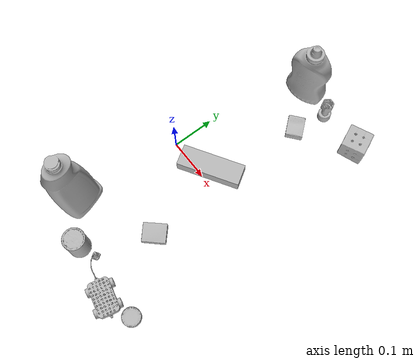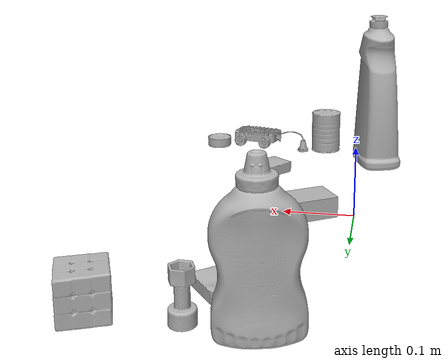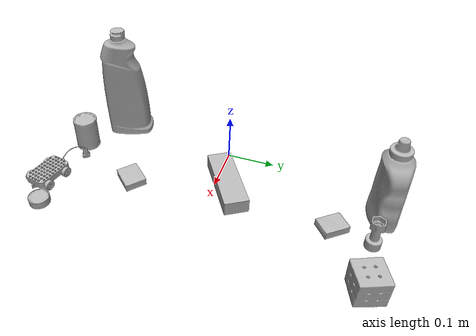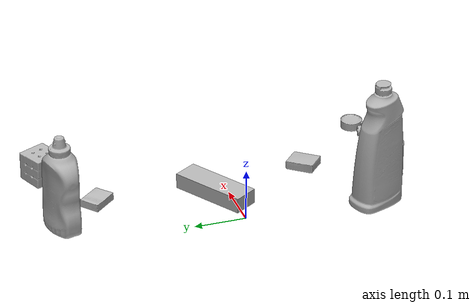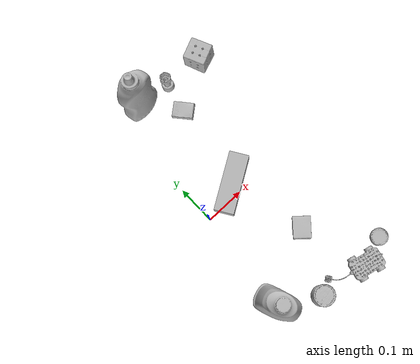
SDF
<sdf version="1.4">
  <world name="default">
    <light name="light1" type="point">
      <pose>0 0 1 0 0 0</pose>
      <diffuse>3 3 3 1</diffuse>
      <specular>3 3 3 1</specular>
    </light>
    <light name="light2" type="point">
      <pose>0 0.5 2 0 0 0</pose>
      <diffuse>1 1 1 1</diffuse>
      <specular>1 1 1 1</specular>
    </light>
    <light name="light3" type="point">
      <pose>0 0.5 2 0 0 0</pose>
      <diffuse>3 3 3 1</diffuse>
      <specular>3 3 3 1</specular>
    </light>
    <scene>
      <ambient>0.7 0.7 0.7</ambient>
    </scene>
    <model name="bottle1">
      <link name="link_bottle1">
        <collision name="default">
          <geometry>
            <mesh>
              <uri>model://mustard_bottle/collision_meshes/collision.obj</uri>
              <scale>1.0 1.0 1.0</scale>
            </mesh>
          </geometry>
          <surface>
            <friction>
              <ode>
                <mu>0.5</mu>
                <mu2>0.5</mu2>
              </ode>
            </friction>
          <contact>
        <ode>
            <max_vel>0</max_vel>
            <min_depth>0.0001</min_depth>
            <kp>1e8</kp>
        </ode>
    </contact></surface>
        </collision>
        <visual name="default">
          <geometry>
            <mesh>
              <uri>model://mustard_bottle/visual_meshes/visual.dae</uri>
              <scale>1.0 1.0 1.0</scale>
            </mesh>
          </geometry>
        </visual>
        <inertial>
          <mass>0.7866348028182983</mass>
          <pose>0.0005032454500906169 -0.00015647400869056582 -0.0174757931381464 0.00041823249995057767 0.0009465787698991903 0.02485370186883952</pose>
          <inertia>
            <ixx>0.0021843775</ixx>
            <iyy>0.0019166061</iyy>
            <izz>0.0005756938</izz>
            <ixy>0</ixy>
            <ixz>0</ixz>
            <iyz>0</iyz>
          </inertia>
        </inertial>
      </link>
      <pose>0.07635516673326492 0.3345118761062622 0.09583090245723724 -0.012050453393902896 -0.004890171955456827 -1.3570061366386656</pose>
    </model>
    <model name="bottle2">
      <link name="link_bottle2">
        <collision name="default">
          <geometry>
            <mesh>
              <uri>model://bleach_cleanser/collision_meshes/collision.obj</uri>
              <scale>1.0 1.0 1.0</scale>
            </mesh>
          </geometry>
          <surface>
            <friction>
              <ode>
                <mu>0.5</mu>
                <mu2>0.5</mu2>
              </ode>
            </friction>
          <contact>
        <ode>
            <max_vel>0</max_vel>
            <min_depth>0.0001</min_depth>
            <kp>1e8</kp>
        </ode>
    </contact></surface>
        </collision>
        <visual name="default">
          <geometry>
            <mesh>
              <uri>model://bleach_cleanser/visual_meshes/visual.dae</uri>
              <scale>1.0 1.0 1.0</scale>
            </mesh>
          </geometry>
        </visual>
        <inertial>
          <mass>1.5776710510253906</mass>
          <pose>0.00012193183647468686 0.003783883061259985 -0.02442161552608013 -0.07381671362264838 0.0004201168949340897 -0.006875045535038288</pose>
          <inertia>
            <ixx>0.007678755</ixx>
            <iyy>0.0071554743</iyy>
            <izz>0.0013128674</izz>
            <ixy>0</ixy>
            <ixz>0</ixz>
            <iyz>0</iyz>
          </inertia>
        </inertial>
      </link>
      <pose>-0.023535629734396935 -0.2510281205177307 0.12578408420085907 -0.00019881698517607645 1.794843540505641e-05 -2.7870277495148867</pose>
    </model>
    <model name="toy1">
      <link name="link_toy1">
        <collision name="default">
          <geometry>
            <mesh>
              <uri>model://g_lego_duplo/collision_meshes/collision.obj</uri>
              <scale>0.5 0.5 0.5</scale>
            </mesh>
          </geometry>
          <surface>
            <friction>
              <ode>
                <mu>0.5</mu>
                <mu2>0.5</mu2>
              </ode>
            </friction>
          <contact>
        <ode>
            <max_vel>0</max_vel>
            <min_depth>0.0001</min_depth>
            <kp>1e8</kp>
        </ode>
    </contact></surface>
        </collision>
        <visual name="default">
          <geometry>
            <mesh>
              <uri>model://g_lego_duplo/visual_meshes/visual.dae</uri>
              <scale>0.5 0.5 0.5</scale>
            </mesh>
          </geometry>
        </visual>
        <inertial>
          <mass>0.06580430269241333</mass>
          <pose>-0.025023844093084335 0.0008777321199886501 0.0019403373589739203 0.010962977320182745 0.038108249742412996 -0.09653031078073558</pose>
          <inertia>
            <ixx>2.3837789e-05</ixx>
            <iyy>7.206929e-05</iyy>
            <izz>9.016138e-05</izz>
            <ixy>0</ixy>
            <ixz>0</ixz>
            <iyz>0</iyz>
          </inertia>
        </inertial>
      </link>
      <pose>0.16814014315605164 -0.32730114459991455 0.014830030500888824 -0.001964634788912373 -0.005036555738597066 2.9128534263100754</pose>
    </model>
    <model name="toy2">
      <link name="link_toy2">
        <collision name="default">
          <geometry>
            <mesh>
              <uri>model://c_toy_airplane/collision_meshes/collision.obj</uri>
              <scale>1.0 1.0 1.0</scale>
            </mesh>
          </geometry>
          <surface>
            <friction>
              <ode>
                <mu>0.5</mu>
                <mu2>0.5</mu2>
              </ode>
            </friction>
          <contact>
        <ode>
            <max_vel>0</max_vel>
            <min_depth>0.0001</min_depth>
            <kp>1e8</kp>
        </ode>
    </contact></surface>
        </collision>
        <visual name="default">
          <geometry>
            <mesh>
              <uri>model://c_toy_airplane/visual_meshes/visual.dae</uri>
              <scale>1.0 1.0 1.0</scale>
            </mesh>
          </geometry>
        </visual>
        <inertial>
          <mass>0.012545601464807987</mass>
          <pose>-0.00023024262918625027 -4.4310368707556336e-07 -0.0060805282555520535 -0.006192226732466636 -0.01679790977646328 0.7654621556572541</pose>
          <inertia>
            <ixx>5.760684e-06</ixx>
            <iyy>5.744425e-06</iyy>
            <izz>1.3524945e-06</izz>
            <ixy>0</ixy>
            <ixz>0</ixz>
            <iyz>0</iyz>
          </inertia>
        </inertial>
      </link>
      <pose>0.15662750601768494 0.3247379958629608 0.03351196274161339 -9.502135702767855e-05 1.235072072494152e-05 0.21048518828138646</pose>
    </model>
    <model name="can1">
      <link name="link_can1">
        <collision name="default">
          <geometry>
            <mesh>
              <uri>model://tuna_fish_can/collision_meshes/collision.obj</uri>
              <scale>0.5 0.5 0.5</scale>
            </mesh>
          </geometry>
          <surface>
            <friction>
              <ode>
                <mu>0.5</mu>
                <mu2>0.5</mu2>
              </ode>
            </friction>
          <contact>
        <ode>
            <max_vel>0</max_vel>
            <min_depth>0.0001</min_depth>
            <kp>1e8</kp>
        </ode>
    </contact></surface>
        </collision>
        <visual name="default">
          <geometry>
            <mesh>
              <uri>model://tuna_fish_can/visual_meshes/visual.dae</uri>
              <scale>0.5 0.5 0.5</scale>
            </mesh>
          </geometry>
        </visual>
        <inertial>
          <mass>0.0216250978410244</mass>
          <pose>-2.036200021393597e-05 -7.256498065544292e-06 -0.0005269024986773729 -0.0017944779234091367 0.00017161663308651613 0.24053681665098822</pose>
          <inertia>
            <ixx>2.923745e-06</ixx>
            <iyy>2.9115588e-06</iyy>
            <izz>5.002946e-06</izz>
            <ixy>0</ixy>
            <ixz>0</ixz>
            <iyz>0</iyz>
          </inertia>
        </inertial>
      </link>
      <pose>0.2657261788845062 -0.31242433190345764 0.00851999968290329 4.508013338965961e-09 -6.001156627605101e-08 -2.1027345792089402</pose>
    </model>
    <model name="can2">
      <link name="link_can2">
        <collision name="default">
          <geometry>
            <mesh>
              <uri>model://master_chef_can/collision_meshes/collision.obj</uri>
              <scale>0.5 0.5 0.5</scale>
            </mesh>
          </geometry>
          <surface>
            <friction>
              <ode>
                <mu>0.5</mu>
                <mu2>0.5</mu2>
              </ode>
            </friction>
          <contact>
        <ode>
            <max_vel>0</max_vel>
            <min_depth>0.0001</min_depth>
            <kp>1e8</kp>
        </ode>
    </contact></surface>
        </collision>
        <visual name="default">
          <geometry>
            <mesh>
              <uri>model://master_chef_can/visual_meshes/visual.dae</uri>
              <scale>0.5 0.5 0.5</scale>
            </mesh>
          </geometry>
        </visual>
        <inertial>
          <mass>0.16779577732086182</mass>
          <pose>-4.661964703700505e-05 1.3926845099376806e-07 -5.080012488178909e-05 -0.001799515621871614 0.0006479176547847844 -0.610266079213139</pose>
          <inertia>
            <ixx>9.848473e-05</ixx>
            <iyy>9.77599e-05</iyy>
            <izz>5.442035e-05</izz>
            <ixy>0</ixy>
            <ixz>0</ixz>
            <iyz>0</iyz>
          </inertia>
        </inertial>
      </link>
      <pose>0.06761664897203445 -0.31542885303497314 0.035301998257637024 -1.4981242223980147e-06 -8.91323998923555e-07 -2.4472696949530715</pose>
    </model>
    <model name="box1">
      <link name="link_box1">
        <collision name="default">
          <geometry>
            <mesh>
              <uri>model://rubiks_cube/collision_meshes/collision.obj</uri>
              <scale>1.0 1.0 1.0</scale>
            </mesh>
          </geometry>
          <surface>
            <friction>
              <ode>
                <mu>0.5</mu>
                <mu2>0.5</mu2>
              </ode>
            </friction>
          <contact>
        <ode>
            <max_vel>0</max_vel>
            <min_depth>0.0001</min_depth>
            <kp>1e8</kp>
        </ode>
    </contact></surface>
        </collision>
        <visual name="default">
          <geometry>
            <mesh>
              <uri>model://rubiks_cube/visual_meshes/visual.dae</uri>
              <scale>1.0 1.0 1.0</scale>
            </mesh>
          </geometry>
        </visual>
        <inertial>
          <mass>0.232398122549057</mass>
          <pose>2.6721041649580002e-05 5.256967051536776e-05 -7.264316082000732e-06 -0.05467303663832053 -0.0981402329670775 -0.034454960240128486</pose>
          <inertia>
            <ixx>0.00012841556</ixx>
            <iyy>0.00012781669</iyy>
            <izz>0.00012947968</izz>
            <ixy>0</ixy>
            <ixz>0</ixz>
            <iyz>0</iyz>
          </inertia>
        </inertial>
      </link>
      <pose>0.26268500089645386 0.32347479462623596 0.02867896854877472 -2.9076452007843554e-06 -1.209710926622385e-06 -2.7339325340188143</pose>
    </model>
    <model name="box2">
      <link name="link_box2">
        <collision name="default">
          <geometry>
            <mesh>
              <uri>model://jenga/collision_meshes/collision.obj</uri>
              <scale>1.0 1.0 1.0</scale>
            </mesh>
          </geometry>
          <surface>
            <friction>
              <ode>
                <mu>0.5</mu>
                <mu2>0.5</mu2>
              </ode>
            </friction>
          <contact>
        <ode>
            <max_vel>0</max_vel>
            <min_depth>0.0001</min_depth>
            <kp>1e8</kp>
        </ode>
    </contact></surface>
        </collision>
        <visual name="default">
          <geometry>
            <mesh>
              <uri>model://jenga/visual_meshes/visual.dae</uri>
              <scale>1.0 1.0 1.0</scale>
            </mesh>
          </geometry>
        </visual>
        <inertial>
          <mass>0.2088489830493927</mass>
          <pose>-2.502855807051674e-07 -0.0001025000965455547 -4.092339804628864e-05 0.0 -7.342154049184251e-07 0.0</pose>
          <inertia>
            <ixx>5.7793575e-05</ixx>
            <iyy>0.00039160773</iyy>
            <izz>0.00041807455</izz>
            <ixy>0</ixy>
            <ixz>0</ixz>
            <iyz>0</iyz>
          </inertia>
        </inertial>
      </link>
      <pose>0.09868502616882324 0.027339309453964233 0.01499999687075615 2.1338237736610147e-08 -1.3349786711418868e-09 -2.5820421199038694</pose>
    </model>
    <model name="box3">
      <link name="link_box3">
        <collision name="default">
          <geometry>
            <mesh>
              <uri>model://cracker_box/collision_meshes/collision.obj</uri>
              <scale>0.25 0.25 0.25</scale>
            </mesh>
          </geometry>
          <surface>
            <friction>
              <ode>
                <mu>0.5</mu>
                <mu2>0.5</mu2>
              </ode>
            </friction>
          <contact>
        <ode>
            <max_vel>0</max_vel>
            <min_depth>0.0001</min_depth>
            <kp>1e8</kp>
        </ode>
    </contact></surface>
        </collision>
        <visual name="default">
          <geometry>
            <mesh>
              <uri>model://cracker_box/visual_meshes/visual.dae</uri>
              <scale>0.25 0.25 0.25</scale>
            </mesh>
          </geometry>
        </visual>
        <inertial>
          <mass>0.039105094969272614</mass>
          <pose>0.00023660340229980648 6.358561222441494e-05 -0.00042573834070935845 -0.0003162078884583708 -0.011106488668689832 0.0025467950032832675</pose>
          <inertia>
            <ixx>6.216619e-06</ixx>
            <iyy>1.0264859e-05</iyy>
            <izz>1.4648894e-05</izz>
            <ixy>0</ixy>
            <ixz>0</ixz>
            <iyz>0</iyz>
          </inertia>
        </inertial>
      </link>
      <pose>0.13951407372951508 0.24852846562862396 0.009120447561144829 -0.011787935126305205 -0.0073671647620361155 -0.8812215853279111</pose>
    </model>
    <model name="box4">
      <link name="link_box4">
        <collision name="default">
          <geometry>
            <mesh>
              <uri>model://pudding_box/collision_meshes/collision.obj</uri>
              <scale>0.5 0.5 0.5</scale>
            </mesh>
          </geometry>
          <surface>
            <friction>
              <ode>
                <mu>0.5</mu>
                <mu2>0.5</mu2>
              </ode>
            </friction>
          <contact>
        <ode>
            <max_vel>0</max_vel>
            <min_depth>0.0001</min_depth>
            <kp>1e8</kp>
        </ode>
    </contact></surface>
        </collision>
        <visual name="default">
          <geometry>
            <mesh>
              <uri>model://pudding_box/visual_meshes/visual.dae</uri>
              <scale>0.5 0.5 0.5</scale>
            </mesh>
          </geometry>
        </visual>
        <inertial>
          <mass>0.03813362866640091</mass>
          <pose>0.00024474109522998333 0.00040339428232982755 -0.0002594413817860186 0.005213101815861678 -0.006603796390356506 0.020079825165494957</pose>
          <inertia>
            <ixx>1.0777026e-05</ixx>
            <iyy>7.25086e-06</iyy>
            <izz>1.5915095e-05</izz>
            <ixy>0</ixy>
            <ixz>0</ixz>
            <iyz>0</iyz>
          </inertia>
        </inertial>
      </link>
      <pose>0.14684903621673584 -0.16746950149536133 0.009862901642918587 0.022348545082517417 -0.011391618188220272 2.4092271694170804</pose>
    </model>
  <physics type="ode">
      <max_contacts>50</max_contacts>
      <ode>
        <solver>
          <type>quick</type>
          <iters>75</iters>
        </solver>
        <constraints>
          <contact_max_correcting_vel>0</contact_max_correcting_vel>
          <contact_surface_layer>0</contact_surface_layer>
        </constraints>
      </ode>
    </physics></world>
</sdf>
